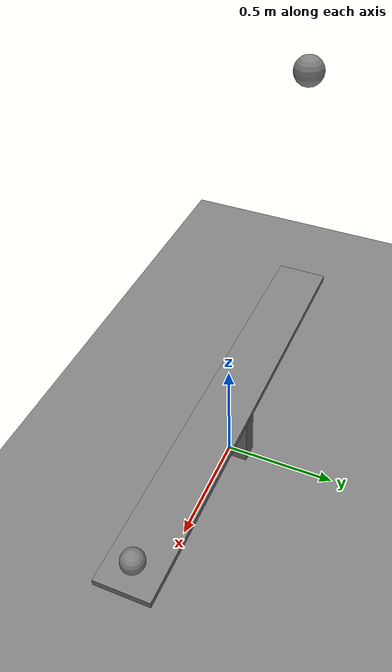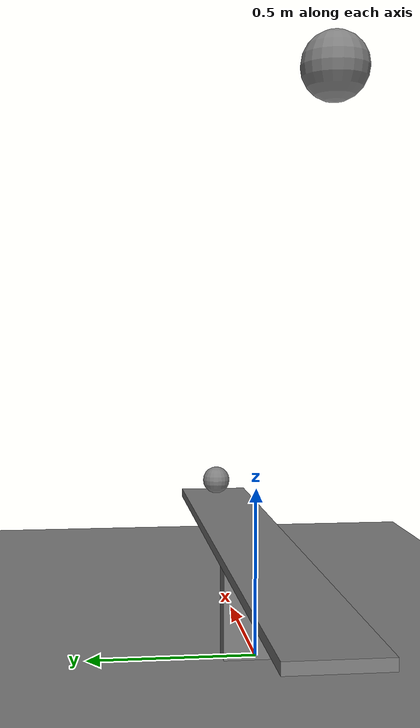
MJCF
<mujoco model="seesaw_fixture">
  <option timestep="0.002"/>
  <worldbody>
    <geom name="floor" type="plane" size="5 5 0.1"/>
    <geom name="pivot_post" type="box" pos="0 0 0.135" size="0.04 0.1 0.135"/>
    <body name="seesaw" pos="0 0 0.3">
      <joint name="seesaw_hinge" type="hinge" axis="0 1 0" range="-25 25" damping="0.01"/>
      <geom name="seesaw_plank" type="box" pos="0 0 0.015" size="1.0 0.12 0.015" mass="2"/>
    </body>
    <body name="ball" pos="0.9 0 0.38">
      <freejoint/>
      <geom name="ball" type="sphere" size="0.05" mass="0.1"/>
    </body>
    <body name="weight" pos="-0.9 0 1.5">
      <freejoint/>
      <geom name="weight" type="sphere" size="0.07" mass="1"/>
    </body>
  </worldbody>
</mujoco>
